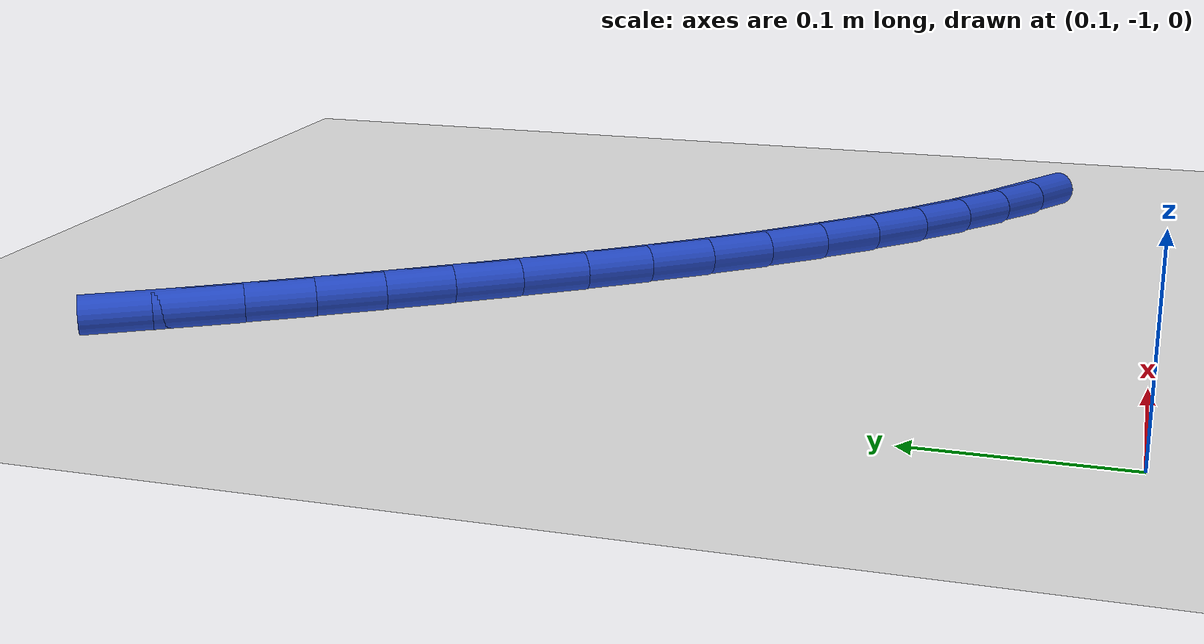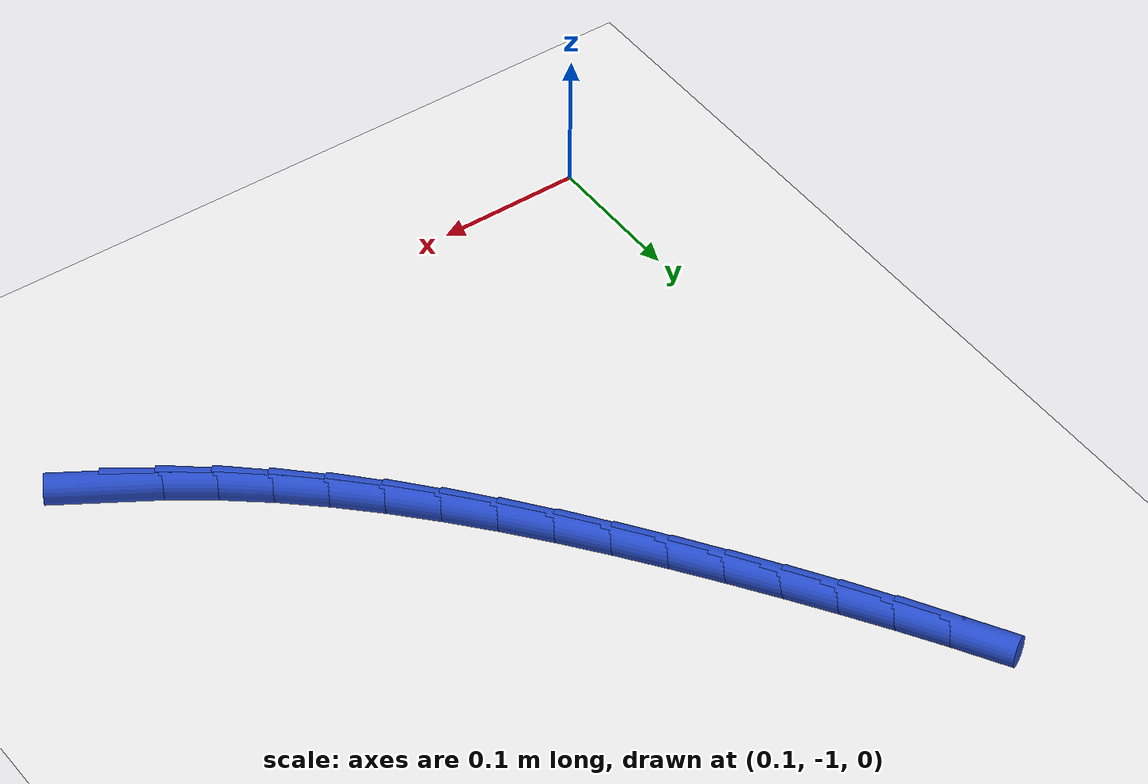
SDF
<sdf version="1.6">
 <world name="default">
  <model name="ground_plane">
   <static>1</static>
   <link name="link">
    <collision name="collision">
     <geometry><plane><normal>0 0 1</normal><size>100 100</size></plane></geometry>
     <surface><friction><ode><mu>100</mu><mu2>50</mu2></ode></friction></surface>
    </collision>
    <visual name="visual">
     <cast_shadows>0</cast_shadows>
     <geometry><plane><normal>0 0 1</normal><size>100 100</size></plane></geometry>
     <material>
      <script><uri>file://media/materials/scripts/gazebo.material</uri><name>Gazebo/WhiteGlow</name></script>
     </material>
    </visual>
   </link>
  </model>
  <model name="line">
   <link name="link_159">
    <pose>0.5058292597024713 -0.9207367198421379 0.01 0 1.57 -0.5488950358983052</pose>
    <collision name="collision">
     <geometry><cylinder><radius>0.01</radius><length>0.08</length></cylinder></geometry>
    </collision>
    <visual name="visual">
     <material>
      <script><name>Gazebo/Blue</name><uri>file://media/materials/scripts/gazebo.material</uri></script>
     </material>
     <geometry><cylinder><radius>0.01</radius><length>0.08</length></cylinder></geometry>
    </visual>
   </link>
   <link name="link_160">
    <pose>0.47674468491289057 -0.9029490032945502 0.01 0 1.57 -0.6125664456544192</pose>
    <collision name="collision">
     <geometry><cylinder><radius>0.01</radius><length>0.08</length></cylinder></geometry>
    </collision>
    <visual name="visual">
     <material>
      <script><name>Gazebo/Blue</name><uri>file://media/materials/scripts/gazebo.material</uri></script>
     </material>
     <geometry><cylinder><radius>0.01</radius><length>0.08</length></cylinder></geometry>
    </visual>
   </link>
   <link name="link_161">
    <pose>0.4486487902580959 -0.8832047297053983 0.01 0 1.57 -0.6703455823087974</pose>
    <collision name="collision">
     <geometry><cylinder><radius>0.01</radius><length>0.08</length></cylinder></geometry>
    </collision>
    <visual name="visual">
     <material>
      <script><name>Gazebo/Blue</name><uri>file://media/materials/scripts/gazebo.material</uri></script>
     </material>
     <geometry><cylinder><radius>0.01</radius><length>0.08</length></cylinder></geometry>
    </visual>
   </link>
   <link name="link_162">
    <pose>0.42149878224805637 -0.8616797466483145 0.01 0 1.57 -0.722353542926162</pose>
    <collision name="collision">
     <geometry><cylinder><radius>0.01</radius><length>0.08</length></cylinder></geometry>
    </collision>
    <visual name="visual">
     <material>
      <script><name>Gazebo/Blue</name><uri>file://media/materials/scripts/gazebo.material</uri></script>
     </material>
     <geometry><cylinder><radius>0.01</radius><length>0.08</length></cylinder></geometry>
    </visual>
   </link>
   <link name="link_163">
    <pose>0.3952518673927408 -0.8385499016969298 0.01 0 1.57 -0.7688264889224157</pose>
    <collision name="collision">
     <geometry><cylinder><radius>0.01</radius><length>0.08</length></cylinder></geometry>
    </collision>
    <visual name="visual">
     <material>
      <script><name>Gazebo/Blue</name><uri>file://media/materials/scripts/gazebo.material</uri></script>
     </material>
     <geometry><cylinder><radius>0.01</radius><length>0.08</length></cylinder></geometry>
    </visual>
   </link>
   <link name="link_164">
    <pose>0.3698652522021187 -0.8139910424248772 0.01 0 1.57 -0.8100634461137884</pose>
    <collision name="collision">
     <geometry><cylinder><radius>0.01</radius><length>0.08</length></cylinder></geometry>
    </collision>
    <visual name="visual">
     <material>
      <script><name>Gazebo/Blue</name><uri>file://media/materials/scripts/gazebo.material</uri></script>
     </material>
     <geometry><cylinder><radius>0.01</radius><length>0.08</length></cylinder></geometry>
    </visual>
   </link>
   <link name="link_165">
    <pose>0.3452961431861591 -0.7881790164057886 0.01 0 1.57 -0.8463863724759004</pose>
    <collision name="collision">
     <geometry><cylinder><radius>0.01</radius><length>0.08</length></cylinder></geometry>
    </collision>
    <visual name="visual">
     <material>
      <script><name>Gazebo/Blue</name><uri>file://media/materials/scripts/gazebo.material</uri></script>
     </material>
     <geometry><cylinder><radius>0.01</radius><length>0.08</length></cylinder></geometry>
    </visual>
   </link>
   <link name="link_166">
    <pose>0.3215017468548315 -0.7612896712132957 0.01 0 1.57 -0.8781116062218386</pose>
    <collision name="collision">
     <geometry><cylinder><radius>0.01</radius><length>0.08</length></cylinder></geometry>
    </collision>
    <visual name="visual">
     <material>
      <script><name>Gazebo/Blue</name><uri>file://media/materials/scripts/gazebo.material</uri></script>
     </material>
     <geometry><cylinder><radius>0.01</radius><length>0.08</length></cylinder></geometry>
    </visual>
   </link>
   <link name="link_167">
    <pose>0.2984392697181042 -0.7334988544210304 0.01 0 1.57 -0.9055304875646923</pose>
    <collision name="collision">
     <geometry><cylinder><radius>0.01</radius><length>0.08</length></cylinder></geometry>
    </collision>
    <visual name="visual">
     <material>
      <script><name>Gazebo/Blue</name><uri>file://media/materials/scripts/gazebo.material</uri></script>
     </material>
     <geometry><cylinder><radius>0.01</radius><length>0.08</length></cylinder></geometry>
    </visual>
   </link>
   <link name="link_168">
    <pose>0.27606591828594684 -0.7049824136026248 0.01 0 1.57 -0.9288966576100444</pose>
    <collision name="collision">
     <geometry><cylinder><radius>0.01</radius><length>0.08</length></cylinder></geometry>
    </collision>
    <visual name="visual">
     <material>
      <script><name>Gazebo/Blue</name><uri>file://media/materials/scripts/gazebo.material</uri></script>
     </material>
     <geometry><cylinder><radius>0.01</radius><length>0.08</length></cylinder></geometry>
    </visual>
   </link>
   <link name="link_169">
    <pose>0.2543388990683285 -0.675916196331711 0.01 0 1.57 -0.9484177581932662</pose>
    <collision name="collision">
     <geometry><cylinder><radius>0.01</radius><length>0.08</length></cylinder></geometry>
    </collision>
    <visual name="visual">
     <material>
      <script><name>Gazebo/Blue</name><uri>file://media/materials/scripts/gazebo.material</uri></script>
     </material>
     <geometry><cylinder><radius>0.01</radius><length>0.08</length></cylinder></geometry>
    </visual>
   </link>
   <link name="link_170">
    <pose>0.23321541857521833 -0.6464760501819207 0.01 0 1.57 -0.964249647799248</pose>
    <collision name="collision">
     <geometry><cylinder><radius>0.01</radius><length>0.08</length></cylinder></geometry>
    </collision>
    <visual name="visual">
     <material>
      <script><name>Gazebo/Blue</name><uri>file://media/materials/scripts/gazebo.material</uri></script>
     </material>
     <geometry><cylinder><radius>0.01</radius><length>0.08</length></cylinder></geometry>
    </visual>
   </link>
   <link name="link_171">
    <pose>0.2126526833165856 -0.6168378227268863 0.01 0 1.57 -0.977328766938406</pose>
    <collision name="collision">
     <geometry><cylinder><radius>0.01</radius><length>0.08</length></cylinder></geometry>
    </collision>
    <visual name="visual">
     <material>
      <script><name>Gazebo/Blue</name><uri>file://media/materials/scripts/gazebo.material</uri></script>
     </material>
     <geometry><cylinder><radius>0.01</radius><length>0.08</length></cylinder></geometry>
    </visual>
   </link>
   <link name="link_172">
    <pose>0.19262389648836095 -0.5871474870232748 0.01 0 1.57 -0.9920855201495535</pose>
    <collision name="collision">
     <geometry><cylinder><radius>0.01</radius><length>0.08</length></cylinder></geometry>
    </collision>
    <visual name="visual">
     <material>
      <script><name>Gazebo/Blue</name><uri>file://media/materials/scripts/gazebo.material</uri></script>
     </material>
     <geometry><cylinder><radius>0.01</radius><length>0.08</length></cylinder></geometry>
    </visual>
   </link>
   <link name="link_173">
    <pose>0.1731857924275711 -0.5573950180355264 0.01 0 1.57 -1.0100000428558042</pose>
    <collision name="collision">
     <geometry><cylinder><radius>0.01</radius><length>0.08</length></cylinder></geometry>
    </collision>
    <visual name="visual">
     <material>
      <script><name>Gazebo/Blue</name><uri>file://media/materials/scripts/gazebo.material</uri></script>
     </material>
     <geometry><cylinder><radius>0.01</radius><length>0.08</length></cylinder></geometry>
    </visual>
   </link>
   <link name="link_174">
    <pose>0.1544222809903234 -0.5275196392469479 0.01 0 1.57 -1.031122287418758</pose>
    <collision name="collision">
     <geometry><cylinder><radius>0.01</radius><length>0.08</length></cylinder></geometry>
    </collision>
    <visual name="visual">
     <material>
      <script><name>Gazebo/Blue</name><uri>file://media/materials/scripts/gazebo.material</uri></script>
     </material>
     <geometry><cylinder><radius>0.01</radius><length>0.08</length></cylinder></geometry>
    </visual>
   </link>
  </model>
 </world>
</sdf>
